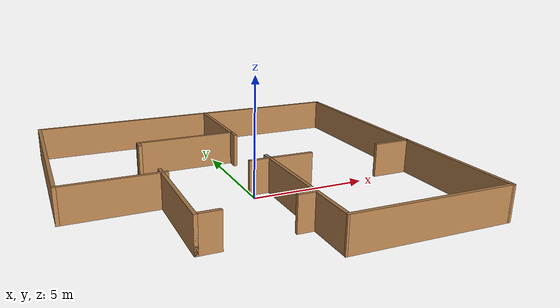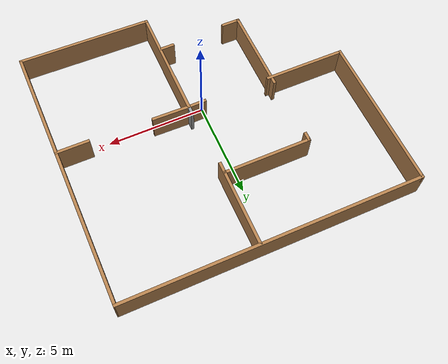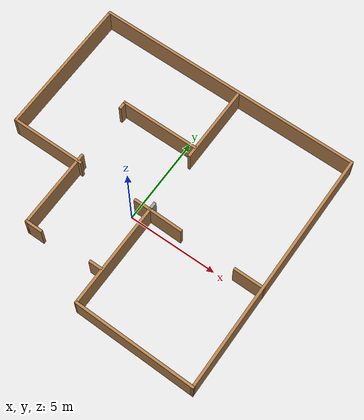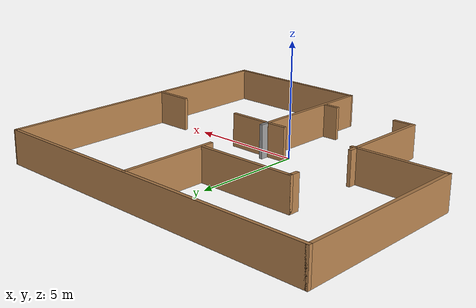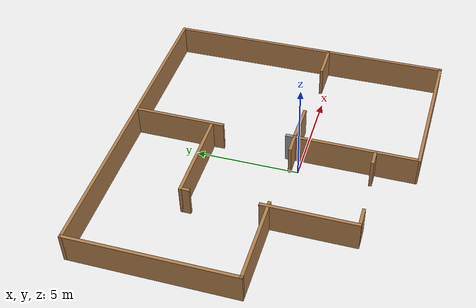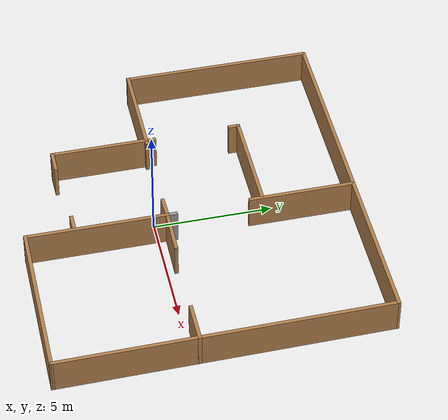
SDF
<?xml version='1.0'?>
<sdf version='1.6'>
  <model name='boundary'>
    <pose frame=''>0.045543 1.37669 0 0 -0 0</pose>
    <link name='Wall_11'>
      <collision name='Wall_11_Collision'>
        <geometry>
          <box>
            <size>1.00014 0.15 1.5</size>
          </box>
        </geometry>
        <pose frame=''>0 0 0.75 0 -0 0</pose>
      </collision>
      <visual name='Wall_11_Visual'>
        <pose frame=''>0 0 0.75 0 -0 0</pose>
        <geometry>
          <box>
            <size>1.00014 0.15 1.5</size>
          </box>
        </geometry>
        <material>
          <script>
            <uri>file://media/materials/scripts/gazebo.material</uri>
            <name>Gazebo/Wood</name>
          </script>
          <ambient>1 1 1 1</ambient>
        </material>
        <meta>
          <layer>0</layer>
        </meta>
      </visual>
      <pose frame=''>0.382457 -0.967686 0 0 -0 -3.12277</pose>
    </link>
    <link name='Wall_13'>
      <collision name='Wall_13_Collision'>
        <geometry>
          <box>
            <size>4.5 0.15 1.5</size>
          </box>
        </geometry>
        <pose frame=''>0 0 0.75 0 -0 0</pose>
      </collision>
      <visual name='Wall_13_Visual'>
        <pose frame=''>0 0 0.75 0 -0 0</pose>
        <geometry>
          <box>
            <size>4.5 0.15 1.5</size>
          </box>
        </geometry>
        <material>
          <script>
            <uri>file://media/materials/scripts/gazebo.material</uri>
            <name>Gazebo/Wood</name>
          </script>
          <ambient>1 1 1 1</ambient>
        </material>
        <meta>
          <layer>0</layer>
        </meta>
      </visual>
      <pose frame=''>0.685457 4.73331 0 0 -0 -1.5708</pose>
    </link>
    <link name='Wall_17'>
      <collision name='Wall_17_Collision'>
        <geometry>
          <box>
            <size>2.00026 0.15 1.5</size>
          </box>
        </geometry>
        <pose frame=''>0 0 0.75 0 -0 0</pose>
      </collision>
      <visual name='Wall_17_Visual'>
        <pose frame=''>0 0 0.75 0 -0 0</pose>
        <geometry>
          <box>
            <size>2.00026 0.15 1.5</size>
          </box>
        </geometry>
        <material>
          <script>
            <uri>file://media/materials/scripts/gazebo.material</uri>
            <name>Gazebo/Wood</name>
          </script>
          <ambient>1 1 1 1</ambient>
        </material>
        <meta>
          <layer>0</layer>
        </meta>
      </visual>
      <pose frame=''>1.73246 -0.975186 0 0 -0 -0.016755</pose>
    </link>
    <link name='Wall_19'>
      <collision name='Wall_19_Collision'>
        <geometry>
          <box>
            <size>1.75 0.15 1.5</size>
          </box>
        </geometry>
        <pose frame=''>0 0 0.75 0 -0 0</pose>
      </collision>
      <visual name='Wall_19_Visual'>
        <pose frame=''>0 0 0.75 0 -0 0</pose>
        <geometry>
          <box>
            <size>1.75 0.15 1.5</size>
          </box>
        </geometry>
        <material>
          <script>
            <uri>file://media/materials/scripts/gazebo.material</uri>
            <name>Gazebo/Wood</name>
          </script>
          <ambient>1 1 1 1</ambient>
        </material>
        <meta>
          <layer>0</layer>
        </meta>
      </visual>
      <pose frame=''>6.75346 -1.08769 0 0 -0 0</pose>
    </link>
    <link name='Wall_28'>
      <collision name='Wall_28_Collision'>
        <geometry>
          <box>
            <size>0.5 0.15 1.5</size>
          </box>
        </geometry>
        <pose frame=''>0 0 0.75 0 -0 0</pose>
      </collision>
      <visual name='Wall_28_Visual'>
        <pose frame=''>0 0 0.75 0 -0 0</pose>
        <geometry>
          <box>
            <size>0.5 0.15 1.5</size>
          </box>
        </geometry>
        <material>
          <script>
            <uri>file://media/materials/scripts/gazebo.material</uri>
            <name>Gazebo/Grey</name>
          </script>
          <ambient>1 1 1 1</ambient>
        </material>
        <meta>
          <layer>0</layer>
        </meta>
      </visual>
      <pose frame=''>0.807457 -0.784686 0 0 -0 1.5708</pose>
    </link>
    <link name='Wall_3'>
      <collision name='Wall_3_Collision'>
        <geometry>
          <box>
            <size>15.2295 0.15 1.5</size>
          </box>
        </geometry>
        <pose frame=''>0 0 0.75 0 -0 0</pose>
      </collision>
      <visual name='Wall_3_Visual'>
        <pose frame=''>0 0 0.75 0 -0 0</pose>
        <geometry>
          <box>
            <size>15.2295 0.15 1.5</size>
          </box>
        </geometry>
        <material>
          <script>
            <uri>file://media/materials/scripts/gazebo.material</uri>
            <name>Gazebo/Wood</name>
          </script>
          <ambient>1 1 1 1</ambient>
        </material>
        <meta>
          <layer>0</layer>
        </meta>
      </visual>
      <pose frame=''>-0.071043 6.91431 0 0 -0 0</pose>
    </link>
    <link name='Wall_30'>
      <collision name='Wall_30_Collision'>
        <geometry>
          <box>
            <size>4.5 0.15 1.5</size>
          </box>
        </geometry>
        <pose frame=''>0 0 0.75 0 -0 0</pose>
      </collision>
      <visual name='Wall_30_Visual'>
        <pose frame=''>0 0 0.75 0 -0 0</pose>
        <geometry>
          <box>
            <size>4.5 0.15 1.5</size>
          </box>
        </geometry>
        <material>
          <script>
            <uri>file://media/materials/scripts/gazebo.material</uri>
            <name>Gazebo/Wood</name>
          </script>
          <ambient>1 1 1 1</ambient>
        </material>
        <meta>
          <layer>0</layer>
        </meta>
      </visual>
      <pose frame=''>-1.54954 3.05431 0 0 -0 3.14159</pose>
    </link>
    <link name='Wall_31'>
      <collision name='Wall_31_Collision'>
        <geometry>
          <box>
            <size>0.5 0.15 1.5</size>
          </box>
        </geometry>
        <pose frame=''>0 0 0.75 0 -0 0</pose>
      </collision>
      <visual name='Wall_31_Visual'>
        <pose frame=''>0 0 0.75 0 -0 0</pose>
        <geometry>
          <box>
            <size>0.5 0.15 1.5</size>
          </box>
        </geometry>
        <material>
          <script>
            <uri>file://media/materials/scripts/gazebo.material</uri>
            <name>Gazebo/Wood</name>
          </script>
          <ambient>1 1 1 1</ambient>
        </material>
        <meta>
          <layer>0</layer>
        </meta>
      </visual>
      <pose frame=''>-3.72454 2.87931 0 0 -0 -1.5708</pose>
    </link>
    <link name='Wall_33'>
      <collision name='Wall_33_Collision'>
        <geometry>
          <box>
            <size>4.5 0.15 1.5</size>
          </box>
        </geometry>
        <pose frame=''>0 0 0.75 0 -0 0</pose>
      </collision>
      <visual name='Wall_33_Visual'>
        <pose frame=''>0 0 0.75 0 -0 0</pose>
        <geometry>
          <box>
            <size>4.5 0.15 1.5</size>
          </box>
        </geometry>
        <material>
          <script>
            <uri>file://media/materials/scripts/gazebo.material</uri>
            <name>Gazebo/Wood</name>
          </script>
          <ambient>1 1 1 1</ambient>
        </material>
        <meta>
          <layer>0</layer>
        </meta>
      </visual>
      <pose frame=''>-3.67854 -2.77269 0 0 -0 -1.5708</pose>
    </link>
    <link name='Wall_34'>
      <collision name='Wall_34_Collision'>
        <geometry>
          <box>
            <size>1 0.15 1.5</size>
          </box>
        </geometry>
        <pose frame=''>0 0 0.75 0 -0 0</pose>
      </collision>
      <visual name='Wall_34_Visual'>
        <pose frame=''>0 0 0.75 0 -0 0</pose>
        <geometry>
          <box>
            <size>1 0.15 1.5</size>
          </box>
        </geometry>
        <material>
          <script>
            <uri>file://media/materials/scripts/gazebo.material</uri>
            <name>Gazebo/Wood</name>
          </script>
          <ambient>1 1 1 1</ambient>
        </material>
        <meta>
          <layer>0</layer>
        </meta>
      </visual>
      <pose frame=''>-3.25354 -4.94769 0 0 -0 0</pose>
    </link>
    <link name='Wall_36'>
      <collision name='Wall_36_Collision'>
        <geometry>
          <box>
            <size>0.75 0.15 1.5</size>
          </box>
        </geometry>
        <pose frame=''>0 0 0.75 0 -0 0</pose>
      </collision>
      <visual name='Wall_36_Visual'>
        <pose frame=''>0 0 0.75 0 -0 0</pose>
        <geometry>
          <box>
            <size>0.75 0.15 1.5</size>
          </box>
        </geometry>
        <material>
          <script>
            <uri>file://media/materials/scripts/gazebo.material</uri>
            <name>Gazebo/Wood</name>
          </script>
          <ambient>1 1 1 1</ambient>
        </material>
        <meta>
          <layer>0</layer>
        </meta>
      </visual>
      <pose frame=''>0.415457 -4.79869 0 0 -0 0</pose>
    </link>
    <link name='Wall_4'>
      <collision name='Wall_4_Collision'>
        <geometry>
          <box>
            <size>13.9782 0.15 1.5</size>
          </box>
        </geometry>
        <pose frame=''>0 0 0.75 0 -0 0</pose>
      </collision>
      <visual name='Wall_4_Visual'>
        <pose frame=''>0 0 0.75 0 -0 0</pose>
        <geometry>
          <box>
            <size>13.9782 0.15 1.5</size>
          </box>
        </geometry>
        <material>
          <script>
            <uri>file://media/materials/scripts/gazebo.material</uri>
            <name>Gazebo/Wood</name>
          </script>
          <ambient>1 1 1 1</ambient>
        </material>
        <meta>
          <layer>0</layer>
        </meta>
      </visual>
      <pose frame=''>7.53896 0.000314 0 0 -0 -1.5606</pose>
    </link>
    <link name='Wall_5'>
      <collision name='Wall_5_Collision'>
        <geometry>
          <box>
            <size>6.95318 0.15 1.5</size>
          </box>
        </geometry>
        <pose frame=''>0 0 0.75 0 -0 0</pose>
      </collision>
      <visual name='Wall_5_Visual'>
        <pose frame=''>0 0 0.75 0 -0 0</pose>
        <geometry>
          <box>
            <size>6.95318 0.15 1.5</size>
          </box>
        </geometry>
        <material>
          <script>
            <uri>file://media/materials/scripts/gazebo.material</uri>
            <name>Gazebo/Wood</name>
          </script>
          <ambient>1 1 1 1</ambient>
        </material>
        <meta>
          <layer>0</layer>
        </meta>
      </visual>
      <pose frame=''>4.20846 -6.86169 0 0 -0 3.1263</pose>
    </link>
    <link name='Wall_6'>
      <collision name='Wall_6_Collision'>
        <geometry>
          <box>
            <size>6 0.15 1.5</size>
          </box>
        </geometry>
        <pose frame=''>0 0 0.75 0 -0 0</pose>
      </collision>
      <visual name='Wall_6_Visual'>
        <pose frame=''>0 0 0.75 0 -0 0</pose>
        <geometry>
          <box>
            <size>6 0.15 1.5</size>
          </box>
        </geometry>
        <material>
          <script>
            <uri>file://media/materials/scripts/gazebo.material</uri>
            <name>Gazebo/Wood</name>
          </script>
          <ambient>1 1 1 1</ambient>
        </material>
        <meta>
          <layer>0</layer>
        </meta>
      </visual>
      <pose frame=''>0.807457 -3.88469 0 0 -0 1.5708</pose>
    </link>
    <link name='Wall_8'>
      <collision name='Wall_8_Collision'>
        <geometry>
          <box>
            <size>8 0.15 1.5</size>
          </box>
        </geometry>
        <pose frame=''>0 0 0.75 0 -0 0</pose>
      </collision>
      <visual name='Wall_8_Visual'>
        <pose frame=''>0 0 0.75 0 -0 0</pose>
        <geometry>
          <box>
            <size>8 0.15 1.5</size>
          </box>
        </geometry>
        <material>
          <script>
            <uri>file://media/materials/scripts/gazebo.material</uri>
            <name>Gazebo/Wood</name>
          </script>
          <ambient>1 1 1 1</ambient>
        </material>
        <meta>
          <layer>0</layer>
        </meta>
      </visual>
      <pose frame=''>-7.61054 2.98931 0 0 -0 -1.5708</pose>
    </link>
    <link name='Wall_9'>
      <collision name='Wall_9_Collision'>
        <geometry>
          <box>
            <size>4.25 0.15 1.5</size>
          </box>
        </geometry>
        <pose frame=''>0 0 0.75 0 -0 0</pose>
      </collision>
      <visual name='Wall_9_Visual'>
        <pose frame=''>0 0 0.75 0 -0 0</pose>
        <geometry>
          <box>
            <size>4.25 0.15 1.5</size>
          </box>
        </geometry>
        <material>
          <script>
            <uri>file://media/materials/scripts/gazebo.material</uri>
            <name>Gazebo/Wood</name>
          </script>
          <ambient>1 1 1 1</ambient>
        </material>
        <meta>
          <layer>0</layer>
        </meta>
      </visual>
      <pose frame=''>-5.56054 -0.935686 0 0 -0 0</pose>
    </link>
    <static>1</static>
  </model>
</sdf>
